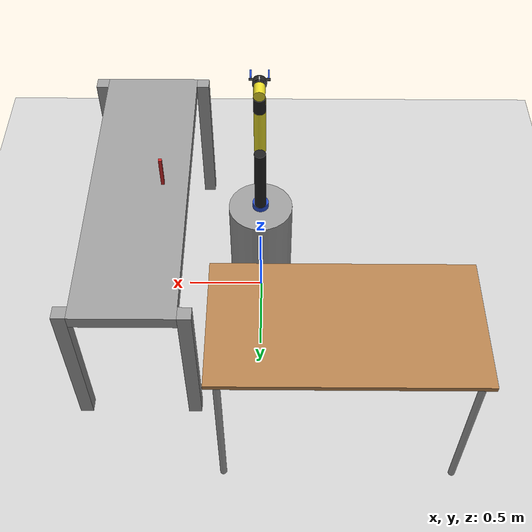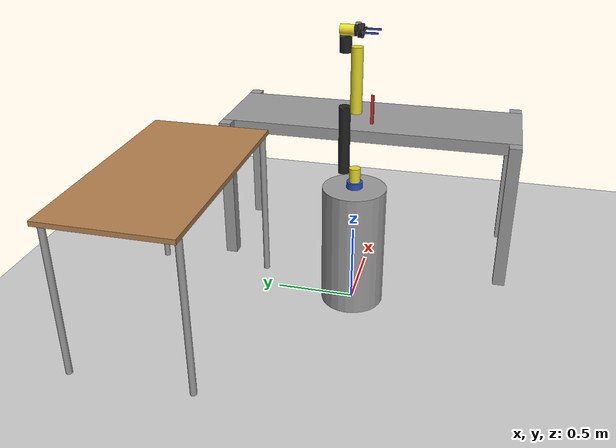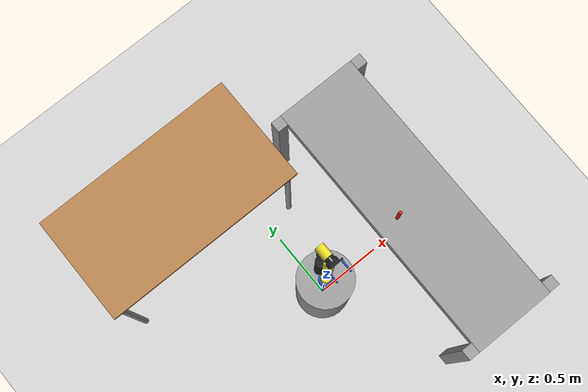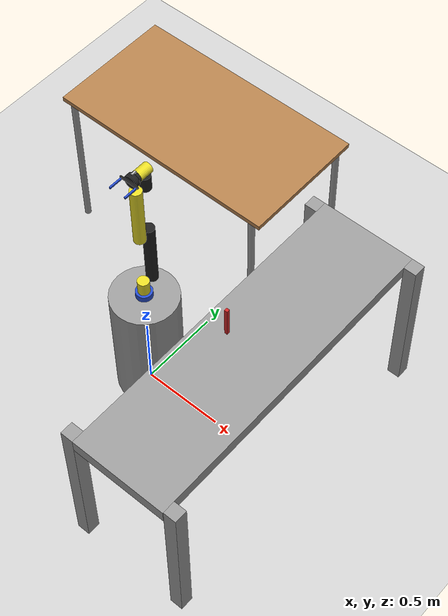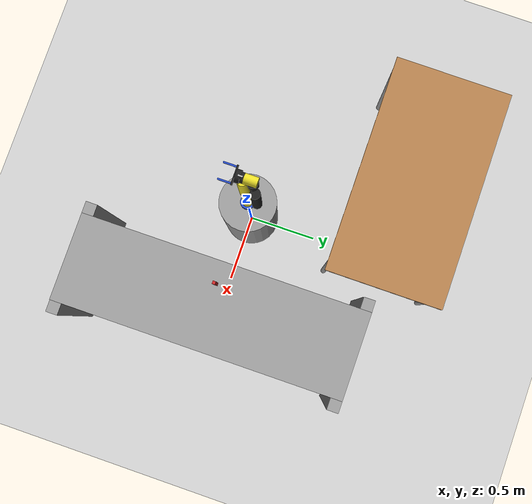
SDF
<sdf version="1.7">
 <world name="default">
  <light name="sun" type="directional">
   <pose>0 0 10 0 -0 0</pose>
   <diffuse>0.8 0.8 0.8 1</diffuse>
   <specular>0.2 0.2 0.2 1</specular>
   <attenuation>
    <range>1000</range>
    <constant>0.9</constant>
    <linear>0.01</linear>
    <quadratic>0.001</quadratic>
   </attenuation>
   <direction>-0.5 0.1 -0.9</direction>
   <spot><inner_angle>0</inner_angle><outer_angle>0</outer_angle><falloff>0</falloff></spot>
  </light>
  <model name="ground_plane">
   <static>1</static>
   <link name="link">
    <collision name="collision">
     <geometry><plane><normal>0 0 1</normal><size>100 100</size></plane></geometry>
     <surface>
      <contact><collide_bitmask>65535</collide_bitmask></contact>
      <friction><ode><mu>100</mu><mu2>50</mu2></ode></friction>
     </surface>
    </collision>
    <visual name="visual">
     <cast_shadows>0</cast_shadows>
     <geometry><plane><normal>0 0 1</normal><size>100 100</size></plane></geometry>
     <material>
      <script><uri>file://media/materials/scripts/gazebo.material</uri><name>Gazebo/Grey</name></script>
     </material>
    </visual>
   </link>
  </model>
  <gravity>0 0 -9.8</gravity>
  <magnetic_field>6e-06 2.3e-05 -4.2e-05</magnetic_field>
  <atmosphere type="adiabatic"/>
  <physics type="ode">
   <max_step_size>0.001</max_step_size>
   <real_time_factor>1</real_time_factor>
   <real_time_update_rate>1000</real_time_update_rate>
  </physics>
  <scene><ambient>0.4 0.4 0.4 1</ambient><background>0.7 0.7 0.7 1</background><shadows>1</shadows></scene>
  <spherical_coordinates>
   <surface_model>EARTH_WGS84</surface_model>
   <latitude_deg>0</latitude_deg>
   <longitude_deg>0</longitude_deg>
   <elevation>0</elevation>
   <heading_deg>0</heading_deg>
  </spherical_coordinates>
  <model name="table">
   <static>1</static>
   <link name="link_table">
    <collision name="surface">
     <pose>0 0 1 0 -0 0</pose>
     <geometry><box><size>1.5 0.8 0.03</size></box></geometry>
     <surface><friction><ode><mu>0.6</mu><mu2>0.6</mu2></ode></friction></surface>
    </collision>
    <visual name="visual1">
     <pose>0 0 1 0 -0 0</pose>
     <geometry><box><size>1.5 0.8 0.03</size></box></geometry>
     <material>
      <script><uri>file://media/materials/scripts/gazebo.material</uri><name>Gazebo/Wood</name></script>
     </material>
    </visual>
    <collision name="front_left_leg">
     <pose>0.68 0.38 0.5 0 -0 0</pose>
     <geometry><cylinder><radius>0.02</radius><length>1</length></cylinder></geometry>
    </collision>
    <visual name="front_left_leg">
     <pose>0.68 0.38 0.5 0 -0 0</pose>
     <geometry><cylinder><radius>0.02</radius><length>1</length></cylinder></geometry>
     <material>
      <script><uri>file://media/materials/scripts/gazebo.material</uri><name>Gazebo/Grey</name></script>
     </material>
    </visual>
    <collision name="front_right_leg">
     <pose>0.68 -0.38 0.5 0 -0 0</pose>
     <geometry><cylinder><radius>0.02</radius><length>1</length></cylinder></geometry>
    </collision>
    <visual name="front_right_leg">
     <pose>0.68 -0.38 0.5 0 -0 0</pose>
     <geometry><cylinder><radius>0.02</radius><length>1</length></cylinder></geometry>
     <material>
      <script><uri>file://media/materials/scripts/gazebo.material</uri><name>Gazebo/Grey</name></script>
     </material>
    </visual>
    <collision name="back_right_leg">
     <pose>-0.68 -0.38 0.5 0 -0 0</pose>
     <geometry><cylinder><radius>0.02</radius><length>1</length></cylinder></geometry>
    </collision>
    <visual name="back_right_leg">
     <pose>-0.68 -0.38 0.5 0 -0 0</pose>
     <geometry><cylinder><radius>0.02</radius><length>1</length></cylinder></geometry>
     <material>
      <script><uri>file://media/materials/scripts/gazebo.material</uri><name>Gazebo/Grey</name></script>
     </material>
    </visual>
    <collision name="back_left_leg">
     <pose>-0.68 0.38 0.5 0 -0 0</pose>
     <geometry><cylinder><radius>0.02</radius><length>1</length></cylinder></geometry>
    </collision>
    <visual name="back_left_leg">
     <pose>-0.68 0.38 0.5 0 -0 0</pose>
     <geometry><cylinder><radius>0.02</radius><length>1</length></cylinder></geometry>
     <material>
      <script><uri>file://media/materials/scripts/gazebo.material</uri><name>Gazebo/Grey</name></script>
     </material>
    </visual>
   </link>
   <pose>-0.470984 1.03526 0 0 -0 0</pose>
  </model>
  <model name="conveyor">
   <link name="link_0">
    <inertial>
     <mass>1</mass>
     <inertia>
      <ixx>0.166667</ixx>
      <ixy>0</ixy>
      <ixz>0</ixz>
      <iyy>0.166667</iyy>
      <iyz>0</iyz>
      <izz>0.166667</izz>
     </inertia>
    </inertial>
    <pose>0 -0.00065 0 0 -0 0</pose>
    <visual name="visual">
     <geometry><box><size>0.6 2 0.08</size></box></geometry>
     <material>
      <lighting>1</lighting>
      <script><uri>file://media/materials/scripts/gazebo.material</uri><name>Gazebo/Grey</name></script>
      <shader type="pixel"><normal_map>__default__</normal_map></shader>
      <ambient>0.21176 0.21568 0.21568 1</ambient>
      <diffuse>0.7 0.7 0.7 1</diffuse>
      <specular>0.01 0.01 0.01 1</specular>
      <emissive>0 0 0 1</emissive>
     </material>
    </visual>
    <collision name="collision">
     <geometry><box><size>0.6 2 0.08</size></box></geometry>
     <surface>
      <friction>
       <ode><mu>4</mu><mu2>1</mu2><fdir1>0 0 0</fdir1><slip1>0</slip1><slip2>0</slip2></ode>
       <torsional>
        <coefficient>1</coefficient>
        <patch_radius>0</patch_radius>
        <surface_radius>0</surface_radius>
        <use_patch_radius>1</use_patch_radius>
        <ode><slip>0</slip></ode>
       </torsional>
      </friction>
      <bounce><restitution_coefficient>0</restitution_coefficient><threshold>1e+06</threshold></bounce>
      <contact>
       <collide_without_contact>0</collide_without_contact>
       <collide_without_contact_bitmask>1</collide_without_contact_bitmask>
       <collide_bitmask>1</collide_bitmask>
       <ode>
        <soft_cfm>0</soft_cfm>
        <soft_erp>0.2</soft_erp>
        <kp>1e+13</kp>
        <kd>1</kd>
        <max_vel>0.01</max_vel>
        <min_depth>0</min_depth>
       </ode>
       <bullet>
        <split_impulse>1</split_impulse>
        <split_impulse_penetration_threshold>-0.01</split_impulse_penetration_threshold>
        <soft_cfm>0</soft_cfm>
        <soft_erp>0.2</soft_erp>
        <kp>1e+13</kp>
        <kd>1</kd>
       </bullet>
      </contact>
     </surface>
    </collision>
   </link>
   <link name="link_1">
    <inertial>
     <mass>1</mass>
     <inertia>
      <ixx>0.166667</ixx>
      <ixy>0</ixy>
      <ixz>0</ixz>
      <iyy>0.166667</iyy>
      <iyz>0</iyz>
      <izz>0.166667</izz>
     </inertia>
    </inertial>
    <pose>0.34 -0.9574 -0.46 0 -0 0</pose>
    <visual name="visual">
     <geometry><box><size>0.08 0.08 1</size></box></geometry>
     <material>
      <lighting>1</lighting>
      <script><uri>file://media/materials/scripts/gazebo.material</uri><name>Gazebo/Grey</name></script>
      <shader type="pixel"><normal_map>__default__</normal_map></shader>
      <ambient>0.3 0.3 0.3 1</ambient>
      <diffuse>0.7 0.7 0.7 1</diffuse>
      <specular>0.01 0.01 0.01 1</specular>
      <emissive>0 0 0 1</emissive>
     </material>
    </visual>
    <collision name="collision">
     <geometry><box><size>0.08 0.08 1</size></box></geometry>
     <surface>
      <friction>
       <ode><mu>1</mu><mu2>1</mu2><fdir1>0 0 0</fdir1><slip1>0</slip1><slip2>0</slip2></ode>
       <torsional>
        <coefficient>1</coefficient>
        <patch_radius>0</patch_radius>
        <surface_radius>0</surface_radius>
        <use_patch_radius>1</use_patch_radius>
        <ode><slip>0</slip></ode>
       </torsional>
      </friction>
      <bounce><restitution_coefficient>0</restitution_coefficient><threshold>1e+06</threshold></bounce>
      <contact>
       <collide_without_contact>0</collide_without_contact>
       <collide_without_contact_bitmask>1</collide_without_contact_bitmask>
       <collide_bitmask>1</collide_bitmask>
       <ode>
        <soft_cfm>0</soft_cfm>
        <soft_erp>0.2</soft_erp>
        <kp>1e+13</kp>
        <kd>1</kd>
        <max_vel>0.01</max_vel>
        <min_depth>0</min_depth>
       </ode>
       <bullet>
        <split_impulse>1</split_impulse>
        <split_impulse_penetration_threshold>-0.01</split_impulse_penetration_threshold>
        <soft_cfm>0</soft_cfm>
        <soft_erp>0.2</soft_erp>
        <kp>1e+13</kp>
        <kd>1</kd>
       </bullet>
      </contact>
     </surface>
    </collision>
   </link>
   <link name="link_1_clone">
    <inertial>
     <mass>1</mass>
     <inertia>
      <ixx>0.166667</ixx>
      <ixy>0</ixy>
      <ixz>0</ixz>
      <iyy>0.166667</iyy>
      <iyz>0</iyz>
      <izz>0.166667</izz>
     </inertia>
    </inertial>
    <pose>0.34 0.95935 -0.46 0 -0 0</pose>
    <visual name="visual">
     <geometry><box><size>0.08 0.08 1</size></box></geometry>
     <material>
      <lighting>1</lighting>
      <script><uri>file://media/materials/scripts/gazebo.material</uri><name>Gazebo/Grey</name></script>
      <shader type="pixel"><normal_map>__default__</normal_map></shader>
      <ambient>0.3 0.3 0.3 1</ambient>
      <diffuse>0.7 0.7 0.7 1</diffuse>
      <specular>0.01 0.01 0.01 1</specular>
      <emissive>0 0 0 1</emissive>
     </material>
    </visual>
    <collision name="collision">
     <geometry><box><size>0.08 0.08 1</size></box></geometry>
     <surface>
      <friction>
       <ode><mu>1</mu><mu2>1</mu2><fdir1>0 0 0</fdir1><slip1>0</slip1><slip2>0</slip2></ode>
       <torsional>
        <coefficient>1</coefficient>
        <patch_radius>0</patch_radius>
        <surface_radius>0</surface_radius>
        <use_patch_radius>1</use_patch_radius>
        <ode><slip>0</slip></ode>
       </torsional>
      </friction>
      <bounce><restitution_coefficient>0</restitution_coefficient><threshold>1e+06</threshold></bounce>
      <contact>
       <collide_without_contact>0</collide_without_contact>
       <collide_without_contact_bitmask>1</collide_without_contact_bitmask>
       <collide_bitmask>1</collide_bitmask>
       <ode>
        <soft_cfm>0</soft_cfm>
        <soft_erp>0.2</soft_erp>
        <kp>1e+13</kp>
        <kd>1</kd>
        <max_vel>0.01</max_vel>
        <min_depth>0</min_depth>
       </ode>
       <bullet>
        <split_impulse>1</split_impulse>
        <split_impulse_penetration_threshold>-0.01</split_impulse_penetration_threshold>
        <soft_cfm>0</soft_cfm>
        <soft_erp>0.2</soft_erp>
        <kp>1e+13</kp>
        <kd>1</kd>
       </bullet>
      </contact>
     </surface>
    </collision>
   </link>
   <link name="link_1_clone_0">
    <inertial>
     <mass>1</mass>
     <inertia>
      <ixx>0.166667</ixx>
      <ixy>0</ixy>
      <ixz>0</ixz>
      <iyy>0.166667</iyy>
      <iyz>0</iyz>
      <izz>0.166667</izz>
     </inertia>
    </inertial>
    <pose>-0.34 0.95935 -0.46 0 -0 0</pose>
    <visual name="visual">
     <geometry><box><size>0.08 0.08 1</size></box></geometry>
     <material>
      <lighting>1</lighting>
      <script><uri>file://media/materials/scripts/gazebo.material</uri><name>Gazebo/Grey</name></script>
      <shader type="pixel"><normal_map>__default__</normal_map></shader>
      <ambient>0.3 0.3 0.3 1</ambient>
      <diffuse>0.7 0.7 0.7 1</diffuse>
      <specular>0.01 0.01 0.01 1</specular>
      <emissive>0 0 0 1</emissive>
     </material>
    </visual>
    <collision name="collision">
     <geometry><box><size>0.08 0.08 1</size></box></geometry>
     <surface>
      <friction>
       <ode><mu>1</mu><mu2>1</mu2><fdir1>0 0 0</fdir1><slip1>0</slip1><slip2>0</slip2></ode>
       <torsional>
        <coefficient>1</coefficient>
        <patch_radius>0</patch_radius>
        <surface_radius>0</surface_radius>
        <use_patch_radius>1</use_patch_radius>
        <ode><slip>0</slip></ode>
       </torsional>
      </friction>
      <bounce><restitution_coefficient>0</restitution_coefficient><threshold>1e+06</threshold></bounce>
      <contact>
       <collide_without_contact>0</collide_without_contact>
       <collide_without_contact_bitmask>1</collide_without_contact_bitmask>
       <collide_bitmask>1</collide_bitmask>
       <ode>
        <soft_cfm>0</soft_cfm>
        <soft_erp>0.2</soft_erp>
        <kp>1e+13</kp>
        <kd>1</kd>
        <max_vel>0.01</max_vel>
        <min_depth>0</min_depth>
       </ode>
       <bullet>
        <split_impulse>1</split_impulse>
        <split_impulse_penetration_threshold>-0.01</split_impulse_penetration_threshold>
        <soft_cfm>0</soft_cfm>
        <soft_erp>0.2</soft_erp>
        <kp>1e+13</kp>
        <kd>1</kd>
       </bullet>
      </contact>
     </surface>
    </collision>
   </link>
   <link name="link_1_clone_1">
    <inertial>
     <mass>1</mass>
     <inertia>
      <ixx>0.166667</ixx>
      <ixy>0</ixy>
      <ixz>0</ixz>
      <iyy>0.166667</iyy>
      <iyz>0</iyz>
      <izz>0.166667</izz>
     </inertia>
    </inertial>
    <pose>-0.34 -0.96065 -0.46 0 -0 0</pose>
    <visual name="visual">
     <geometry><box><size>0.08 0.08 1</size></box></geometry>
     <material>
      <lighting>1</lighting>
      <script><uri>file://media/materials/scripts/gazebo.material</uri><name>Gazebo/Grey</name></script>
      <shader type="pixel"><normal_map>__default__</normal_map></shader>
      <ambient>0.3 0.3 0.3 1</ambient>
      <diffuse>0.7 0.7 0.7 1</diffuse>
      <specular>0.01 0.01 0.01 1</specular>
      <emissive>0 0 0 1</emissive>
     </material>
    </visual>
    <collision name="collision">
     <geometry><box><size>0.08 0.08 1</size></box></geometry>
     <surface>
      <friction>
       <ode><mu>1</mu><mu2>1</mu2><fdir1>0 0 0</fdir1><slip1>0</slip1><slip2>0</slip2></ode>
       <torsional>
        <coefficient>1</coefficient>
        <patch_radius>0</patch_radius>
        <surface_radius>0</surface_radius>
        <use_patch_radius>1</use_patch_radius>
        <ode><slip>0</slip></ode>
       </torsional>
      </friction>
      <bounce><restitution_coefficient>0</restitution_coefficient><threshold>1e+06</threshold></bounce>
      <contact>
       <collide_without_contact>0</collide_without_contact>
       <collide_without_contact_bitmask>1</collide_without_contact_bitmask>
       <collide_bitmask>1</collide_bitmask>
       <ode>
        <soft_cfm>0</soft_cfm>
        <soft_erp>0.2</soft_erp>
        <kp>1e+13</kp>
        <kd>1</kd>
        <max_vel>0.01</max_vel>
        <min_depth>0</min_depth>
       </ode>
       <bullet>
        <split_impulse>1</split_impulse>
        <split_impulse_penetration_threshold>-0.01</split_impulse_penetration_threshold>
        <soft_cfm>0</soft_cfm>
        <soft_erp>0.2</soft_erp>
        <kp>1e+13</kp>
        <kd>1</kd>
       </bullet>
      </contact>
     </surface>
    </collision>
   </link>
   <joint name="link_0_JOINT_0" type="fixed">
    <parent>link_0</parent>
    <child>link_1</child>
    <physics>
     <ode><limit><cfm>0</cfm><erp>0.2</erp></limit><suspension><cfm>0</cfm><erp>0.2</erp></suspension></ode>
    </physics>
   </joint>
   <joint name="link_0_JOINT_1" type="fixed">
    <parent>link_0</parent>
    <child>link_1_clone</child>
    <physics>
     <ode><limit><cfm>0</cfm><erp>0.2</erp></limit><suspension><cfm>0</cfm><erp>0.2</erp></suspension></ode>
    </physics>
   </joint>
   <joint name="link_0_JOINT_2" type="fixed">
    <parent>link_0</parent>
    <child>link_1_clone_0</child>
    <physics>
     <ode><limit><cfm>0</cfm><erp>0.2</erp></limit><suspension><cfm>0</cfm><erp>0.2</erp></suspension></ode>
    </physics>
   </joint>
   <joint name="link_0_JOINT_3" type="fixed">
    <parent>link_0</parent>
    <child>link_1_clone_1</child>
    <physics>
     <ode><limit><cfm>0</cfm><erp>0.2</erp></limit><suspension><cfm>0</cfm><erp>0.2</erp></suspension></ode>
    </physics>
   </joint>
   <static>0</static>
   <pose>0.741125 0.013165 0.96 0 -0 0.000397</pose>
  </model>
  <model name="support">
   <link name="link_2">
    <inertial>
     <mass>1</mass>
     <inertia><ixx>0.145833</ixx><ixy>0</ixy><ixz>0</ixz><iyy>0.145833</iyy><iyz>0</iyz><izz>0.125</izz></inertia>
    </inertial>
    <visual name="visual">
     <geometry><cylinder><radius>0.2</radius><length>0.8</length></cylinder></geometry>
     <material>
      <lighting>1</lighting>
      <script><uri>file://media/materials/scripts/gazebo.material</uri><name>Gazebo/Grey</name></script>
      <shader type="pixel"><normal_map>__default__</normal_map></shader>
      <ambient>0.3 0.3 0.3 1</ambient>
      <diffuse>0.7 0.7 0.7 1</diffuse>
      <specular>0.01 0.01 0.01 1</specular>
      <emissive>0 0 0 1</emissive>
     </material>
    </visual>
    <collision name="collision">
     <geometry><cylinder><radius>0.2</radius><length>0.8</length></cylinder></geometry>
     <surface>
      <friction>
       <ode><mu>1</mu><mu2>1</mu2><fdir1>0 0 0</fdir1><slip1>0</slip1><slip2>0</slip2></ode>
       <torsional>
        <coefficient>1</coefficient>
        <patch_radius>0</patch_radius>
        <surface_radius>0</surface_radius>
        <use_patch_radius>1</use_patch_radius>
        <ode><slip>0</slip></ode>
       </torsional>
      </friction>
      <bounce><restitution_coefficient>0</restitution_coefficient><threshold>1e+06</threshold></bounce>
      <contact>
       <collide_without_contact>0</collide_without_contact>
       <collide_without_contact_bitmask>1</collide_without_contact_bitmask>
       <collide_bitmask>1</collide_bitmask>
       <ode>
        <soft_cfm>0</soft_cfm>
        <soft_erp>0.2</soft_erp>
        <kp>1e+13</kp>
        <kd>1</kd>
        <max_vel>0.01</max_vel>
        <min_depth>0</min_depth>
       </ode>
       <bullet>
        <split_impulse>1</split_impulse>
        <split_impulse_penetration_threshold>-0.01</split_impulse_penetration_threshold>
        <soft_cfm>0</soft_cfm>
        <soft_erp>0.2</soft_erp>
        <kp>1e+13</kp>
        <kd>1</kd>
       </bullet>
      </contact>
     </surface>
    </collision>
   </link>
   <static>0</static>
   <pose>1e-06 1e-06 0.39999 0 -0 0</pose>
  </model>
  <audio><device>default</device></audio>
  <model name="cobot">
   <joint name="fixed" type="fixed">
    <pose relative_to="__model__">0 0 0.8 0 -0 0</pose>
    <parent>world</parent>
    <child>base_link</child>
   </joint>
   <link name="base_link">
    <pose relative_to="fixed">0 0 0 0 -0 0</pose>
    <inertial>
     <pose>0 0 0.02 0 -0 0</pose>
     <mass>4</mass>
     <inertia><ixx>0.003033</ixx><ixy>0</ixy><ixz>0</ixz><iyy>0.003033</iyy><iyz>0</iyz><izz>0.005</izz></inertia>
    </inertial>
    <collision name="base_link_collision">
     <pose>0 0 0.02 0 -0 0</pose>
     <geometry><cylinder><length>0.04</length><radius>0.05</radius></cylinder></geometry>
    </collision>
    <visual name="base_link_visual">
     <pose>0 0 0.02 0 -0 0</pose>
     <geometry><cylinder><length>0.04</length><radius>0.05</radius></cylinder></geometry>
     <material>
      <script><name>Gazebo/Blue</name><uri>file://media/materials/scripts/gazebo.material</uri></script>
     </material>
    </visual>
    <visual name="base_link_fixed_joint_lump__camera_link_visual_1">
     <pose>0 0 1 0 -0 0</pose>
     <geometry><box><size>0.01 0.03 0.03</size></box></geometry>
    </visual>
   </link>
   <joint name="base_link__link1" type="revolute">
    <pose relative_to="base_link">0 0 0.04 0 -0 0</pose>
    <parent>base_link</parent>
    <child>link1</child>
    <axis>
     <xyz>0 0 1</xyz>
     <limit><lower>-3.14159</lower><upper>3.14159</upper><effort>1000</effort><velocity>0.5</velocity></limit>
     <dynamics><spring_reference>0</spring_reference><spring_stiffness>0</spring_stiffness></dynamics>
    </axis>
   </joint>
   <link name="link1">
    <pose relative_to="base_link__link1">0 0 0 0 -0 0</pose>
    <inertial>
     <pose>0 0 0.045 0 -0 0</pose>
     <mass>3.7</mass>
     <inertia>
      <ixx>0.00363063</ixx>
      <ixy>0</ixy>
      <ixz>0</ixz>
      <iyy>0.00363063</iyy>
      <iyz>0</iyz>
      <izz>0.00226625</izz>
     </inertia>
    </inertial>
    <collision name="link1_collision">
     <pose>0 0 0.045 0 -0 0</pose>
     <geometry><cylinder><length>0.09</length><radius>0.035</radius></cylinder></geometry>
    </collision>
    <visual name="link1_visual">
     <pose>0 0 0.045 0 -0 0</pose>
     <geometry><cylinder><length>0.09</length><radius>0.035</radius></cylinder></geometry>
     <material>
      <script><name>Gazebo/Yellow</name><uri>file://media/materials/scripts/gazebo.material</uri></script>
     </material>
    </visual>
   </link>
   <joint name="link1__link2" type="revolute">
    <pose relative_to="link1">0 0.07 0.055 0 -0 0</pose>
    <parent>link1</parent>
    <child>link2</child>
    <axis>
     <xyz>0 1 0</xyz>
     <limit><lower>-3.14159</lower><upper>3.14159</upper><effort>1000</effort><velocity>0.5</velocity></limit>
     <dynamics><spring_reference>0</spring_reference><spring_stiffness>0</spring_stiffness></dynamics>
    </axis>
   </joint>
   <link name="link2">
    <pose relative_to="link1__link2">0 0 0 0 -0 0</pose>
    <inertial>
     <pose>0 0 0.2125 0 -0 0</pose>
     <mass>8.3</mass>
     <inertia><ixx>0.499729</ixx><ixy>0</ixy><ixz>0</ixz><iyy>0</iyy><iyz>0</iyz><izz>0.499729</izz></inertia>
    </inertial>
    <collision name="link2_collision">
     <pose>0 0 0.2125 0 -0 0</pose>
     <geometry><cylinder><length>0.425</length><radius>0.035</radius></cylinder></geometry>
    </collision>
    <visual name="link2_visual">
     <pose>0 0 0.2125 0 -0 0</pose>
     <geometry><cylinder><length>0.425</length><radius>0.035</radius></cylinder></geometry>
     <material>
      <script><name>Gazebo/Black</name><uri>file://media/materials/scripts/gazebo.material</uri></script>
     </material>
    </visual>
   </link>
   <joint name="link2__link3" type="revolute">
    <pose relative_to="link2">0 -0.0675 0.39 0 -0 0</pose>
    <parent>link2</parent>
    <child>link3</child>
    <axis>
     <xyz>0 1 0</xyz>
     <limit><lower>-3.14159</lower><upper>3.14159</upper><effort>1000</effort><velocity>0.5</velocity></limit>
     <dynamics><spring_reference>0</spring_reference><spring_stiffness>0</spring_stiffness></dynamics>
    </axis>
   </joint>
   <link name="link3">
    <pose relative_to="link2__link3">0 0 0 0 -0 0</pose>
    <inertial>
     <pose>0 0 0.196 0 -0 0</pose>
     <mass>2.3</mass>
     <inertia><ixx>0.117809</ixx><ixy>0</ixy><ixz>0</ixz><iyy>0</iyy><iyz>0</iyz><izz>0.117809</izz></inertia>
    </inertial>
    <collision name="link3_collision">
     <pose>0 0 0.196 0 -0 0</pose>
     <geometry><cylinder><length>0.392</length><radius>0.035</radius></cylinder></geometry>
    </collision>
    <visual name="link3_visual">
     <pose>0 0 0.196 0 -0 0</pose>
     <geometry><cylinder><length>0.392</length><radius>0.035</radius></cylinder></geometry>
     <material>
      <script><name>Gazebo/Yellow</name><uri>file://media/materials/scripts/gazebo.material</uri></script>
     </material>
    </visual>
   </link>
   <joint name="link3__link4" type="revolute">
    <pose relative_to="link3">0 0.0675 0.357 0 -0 0</pose>
    <parent>link3</parent>
    <child>link4</child>
    <axis>
     <xyz>0 1 0</xyz>
     <limit><lower>-3.14159</lower><upper>3.14159</upper><effort>1000</effort><velocity>0.5</velocity></limit>
     <dynamics><spring_reference>0</spring_reference><spring_stiffness>0</spring_stiffness></dynamics>
    </axis>
   </joint>
   <link name="link4">
    <pose relative_to="link3__link4">0 0 0 0 -0 0</pose>
    <inertial>
     <pose>0 0 0.047 0 -0 0</pose>
     <mass>1.2</mass>
     <inertia><ixx>0.0035344</ixx><ixy>0</ixy><ixz>0</ixz><iyy>0</iyy><iyz>0</iyz><izz>0.0035344</izz></inertia>
    </inertial>
    <collision name="link4_collision">
     <pose>0 0 0.047 0 -0 0</pose>
     <geometry><cylinder><length>0.094</length><radius>0.035</radius></cylinder></geometry>
    </collision>
    <visual name="link4_visual">
     <pose>0 0 0.047 0 -0 0</pose>
     <geometry><cylinder><length>0.094</length><radius>0.035</radius></cylinder></geometry>
     <material>
      <script><name>Gazebo/Black</name><uri>file://media/materials/scripts/gazebo.material</uri></script>
     </material>
    </visual>
   </link>
   <joint name="link4__link5" type="revolute">
    <pose relative_to="link4">0 0 0.1265 1.57 -0 0</pose>
    <parent>link4</parent>
    <child>link5</child>
    <axis>
     <xyz>0 1 0</xyz>
     <limit><lower>-3.14159</lower><upper>3.14159</upper><effort>1000</effort><velocity>0.5</velocity></limit>
     <dynamics><spring_reference>0</spring_reference><spring_stiffness>0</spring_stiffness></dynamics>
    </axis>
   </joint>
   <link name="link5">
    <pose relative_to="link4__link5">0 0 0 0 -0 0</pose>
    <inertial>
     <pose>0 0 0.009 0 -0 0</pose>
     <mass>1.2</mass>
     <inertia><ixx>0.0027556</ixx><ixy>0</ixy><ixz>0</ixz><iyy>0</iyy><iyz>0</iyz><izz>0.0027556</izz></inertia>
    </inertial>
    <collision name="link5_collision">
     <pose>0 0 0.009 0 -0 0</pose>
     <geometry><cylinder><length>0.083</length><radius>0.0325</radius></cylinder></geometry>
    </collision>
    <visual name="link5_visual">
     <pose>0 0 0.009 0 -0 0</pose>
     <geometry><cylinder><length>0.083</length><radius>0.0325</radius></cylinder></geometry>
     <material>
      <script><name>Gazebo/Yellow</name><uri>file://media/materials/scripts/gazebo.material</uri></script>
     </material>
    </visual>
   </link>
   <joint name="link5__link6" type="revolute">
    <pose relative_to="link5">0 0 0.0505 0 -0 0</pose>
    <parent>link5</parent>
    <child>link6</child>
    <axis>
     <xyz>0 0 1</xyz>
     <limit><lower>-3.14159</lower><upper>3.14159</upper><effort>1000</effort><velocity>0.5</velocity></limit>
     <dynamics><spring_reference>0</spring_reference><spring_stiffness>0</spring_stiffness></dynamics>
    </axis>
   </joint>
   <link name="link6">
    <pose relative_to="link5__link6">0 0 0 0 -0 0</pose>
    <inertial>
     <pose>0 0.001316 0.035 0 -0 0</pose>
     <mass>0.95</mass>
     <inertia>
      <ixx>0.000826584</ixx>
      <ixy>0</ixy>
      <ixz>0</ixz>
      <iyy>0.000821979</iyy>
      <iyz>-2.5e-05</iyz>
      <izz>0.000476897</izz>
     </inertia>
    </inertial>
    <collision name="link6_collision">
     <pose>0 0 0.01 0 -0 0</pose>
     <geometry><cylinder><length>0.02</length><radius>0.0325</radius></cylinder></geometry>
    </collision>
    <collision name="link6_fixed_joint_lump__gripper_connector_collision_1">
     <pose>0 0 0.035 0 -0 0</pose>
     <geometry><cylinder><length>0.03</length><radius>0.04</radius></cylinder></geometry>
    </collision>
    <collision name="link6_fixed_joint_lump__finger_support_collision_2">
     <pose>0 0.005 0.055 0 -0 0</pose>
     <geometry><box><size>0.12 0.01 0.01</size></box></geometry>
    </collision>
    <visual name="link6_visual">
     <pose>0 0 0.01 0 -0 0</pose>
     <geometry><cylinder><length>0.02</length><radius>0.0325</radius></cylinder></geometry>
     <material>
      <script><name>Gazebo/Black</name><uri>file://media/materials/scripts/gazebo.material</uri></script>
     </material>
    </visual>
    <visual name="link6_fixed_joint_lump__gripper_connector_visual_1">
     <pose>0 0 0.035 0 -0 0</pose>
     <geometry><cylinder><length>0.03</length><radius>0.04</radius></cylinder></geometry>
     <material>
      <script><name>Gazebo/Black</name><uri>file://media/materials/scripts/gazebo.material</uri></script>
     </material>
    </visual>
    <visual name="link6_fixed_joint_lump__finger_support_visual_2">
     <pose>0 0.005 0.055 0 -0 0</pose>
     <geometry><box><size>0.12 0.01 0.01</size></box></geometry>
     <material>
      <script><name>Gazebo/Black</name><uri>file://media/materials/scripts/gazebo.material</uri></script>
     </material>
    </visual>
   </link>
   <joint name="finger_left_joint" type="prismatic">
    <pose relative_to="link6">0.05 0 0.061 0 -0 0</pose>
    <parent>link6</parent>
    <child>finger_left</child>
    <axis>
     <xyz>1 0 0</xyz>
     <limit><lower>-0.044</lower><upper>0</upper><effort>400</effort><velocity>0.5</velocity></limit>
     <dynamics>
      <damping>0</damping>
      <friction>2</friction>
      <spring_reference>0</spring_reference>
      <spring_stiffness>0</spring_stiffness>
     </dynamics>
    </axis>
   </joint>
   <link name="finger_left">
    <pose relative_to="finger_left_joint">0 0 0 0 -0 0</pose>
    <inertial>
     <pose>0 0 0.04 0 -0 0</pose>
     <mass>0.2</mass>
     <inertia>
      <ixx>0.00042667</ixx>
      <ixy>0</ixy>
      <ixz>0</ixz>
      <iyy>0.00042667</iyy>
      <iyz>0</iyz>
      <izz>8.3e-06</izz>
     </inertia>
    </inertial>
    <collision name="finger_left_collision">
     <pose>0 0 0.04 0 -0 0</pose>
     <geometry><box><size>0.01 0.01 0.08</size></box></geometry>
    </collision>
    <visual name="finger_left_visual">
     <pose>0 0 0.04 0 -0 0</pose>
     <geometry><box><size>0.01 0.01 0.08</size></box></geometry>
     <material>
      <script><name>Gazebo/Blue</name><uri>file://media/materials/scripts/gazebo.material</uri></script>
     </material>
    </visual>
   </link>
   <joint name="finger_right_joint" type="prismatic">
    <pose relative_to="link6">-0.05 0 0.061 0 -0 0</pose>
    <parent>link6</parent>
    <child>finger_right</child>
    <axis>
     <xyz>1 0 0</xyz>
     <limit><lower>0</lower><upper>0.044</upper><effort>400</effort><velocity>0.5</velocity></limit>
     <dynamics>
      <damping>1</damping>
      <friction>2</friction>
      <spring_reference>0</spring_reference>
      <spring_stiffness>0</spring_stiffness>
     </dynamics>
    </axis>
   </joint>
   <link name="finger_right">
    <pose relative_to="finger_right_joint">0 0 0 0 -0 0</pose>
    <inertial>
     <pose>0 0 0.04 0 -0 0</pose>
     <mass>0.2</mass>
     <inertia>
      <ixx>0.00042667</ixx>
      <ixy>0</ixy>
      <ixz>0</ixz>
      <iyy>0.00042667</iyy>
      <iyz>0</iyz>
      <izz>8.3e-06</izz>
     </inertia>
    </inertial>
    <collision name="finger_right_collision">
     <pose>0 0 0.04 0 -0 0</pose>
     <geometry><box><size>0.01 0.01 0.08</size></box></geometry>
    </collision>
    <visual name="finger_right_visual">
     <pose>0 0 0.04 0 -0 0</pose>
     <geometry><box><size>0.01 0.01 0.08</size></box></geometry>
     <material>
      <script><name>Gazebo/Blue</name><uri>file://media/materials/scripts/gazebo.material</uri></script>
     </material>
    </visual>
   </link>
   <plugin name="gazebo_grasp_fix" filename="libgazebo_grasp_fix.so">
    <arm>
     <arm_name>custom_gripper</arm_name>
     <palm_link>link6</palm_link>
     <gripper_link>finger_right</gripper_link>
     <gripper_link>finger_left</gripper_link>
    </arm>
    <forces_angle_tolerance>100</forces_angle_tolerance>
    <update_rate>4</update_rate>
    <grip_count_threshold>4</grip_count_threshold>
    <max_grip_count>8</max_grip_count>
    <release_tolerance>0.005</release_tolerance>
    <disable_collisions_on_attach>0</disable_collisions_on_attach>
    <contact_topic>__default_topic__</contact_topic>
   </plugin>
   <plugin name="gazebo_grasp_fix" filename="libgazebo_grasp_fix.so">
    <arm>
     <arm_name>custom_gripper</arm_name>
     <palm_link>link6</palm_link>
     <gripper_link>finger_right</gripper_link>
     <gripper_link>finger_left</gripper_link>
    </arm>
    <forces_angle_tolerance>100</forces_angle_tolerance>
    <update_rate>4</update_rate>
    <grip_count_threshold>4</grip_count_threshold>
    <max_grip_count>8</max_grip_count>
    <release_tolerance>0.005</release_tolerance>
    <disable_collisions_on_attach>0</disable_collisions_on_attach>
    <contact_topic>__default_topic__</contact_topic>
   </plugin>
   <plugin name="finger_left_joint_mimic_joint_plugin" filename="libroboticsgroup_upatras_gazebo_mimic_joint_plugin.so">
    <joint>finger_right_joint</joint>
    <mimicJoint>finger_left_joint</mimicJoint>
    <multiplier>-1.0</multiplier>
    <offset>0</offset>
    <sensitiveness>0.0</sensitiveness>
    <maxEffort>200</maxEffort>
   </plugin>
   <static>0</static>
   <plugin name="gazebo_ros2_control" filename="libgazebo_ros2_control.so">
    <robot_param>robot_description</robot_param>
    <parameters>/home/fra/ros2_master_ws/install/cobot_gazebo/share/cobot_gazebo/config/controllers_trajectory.yaml</parameters>
   </plugin>
   <pose>-0 2.5e-05 0 3.1e-05 -0 0</pose>
  </model>
  <model name="red_cube">
   <link name="link_0">
    <inertial>
     <mass>1</mass>
     <inertia>
      <ixx>0.166667</ixx>
      <ixy>0</ixy>
      <ixz>0</ixz>
      <iyy>0.166667</iyy>
      <iyz>0</iyz>
      <izz>0.166667</izz>
     </inertia>
    </inertial>
    <visual name="visual">
     <geometry><box><size>0.02 0.02 0.2</size></box></geometry>
     <material>
      <lighting>1</lighting>
      <script><uri>file://media/materials/scripts/gazebo.material</uri><name>Gazebo/Red</name></script>
      <shader type="pixel"><normal_map>__default__</normal_map></shader>
      <ambient>1 0 0 1</ambient>
      <diffuse>0.7 0.7 0.7 1</diffuse>
      <specular>0.01 0.01 0.01 1</specular>
      <emissive>0 0 0 1</emissive>
     </material>
    </visual>
    <collision name="collision">
     <geometry><box><size>0.02 0.02 0.2</size></box></geometry>
     <surface>
      <friction>
       <ode><mu>1</mu><mu2>1</mu2><fdir1>0 0 0</fdir1><slip1>0</slip1><slip2>0</slip2></ode>
       <torsional>
        <coefficient>1</coefficient>
        <patch_radius>0</patch_radius>
        <surface_radius>0</surface_radius>
        <use_patch_radius>1</use_patch_radius>
        <ode><slip>0</slip></ode>
       </torsional>
      </friction>
      <bounce><restitution_coefficient>0</restitution_coefficient><threshold>1e+06</threshold></bounce>
      <contact>
       <collide_without_contact>0</collide_without_contact>
       <collide_without_contact_bitmask>1</collide_without_contact_bitmask>
       <collide_bitmask>1</collide_bitmask>
       <ode>
        <soft_cfm>0</soft_cfm>
        <soft_erp>0.2</soft_erp>
        <kp>1e+13</kp>
        <kd>1</kd>
        <max_vel>0.01</max_vel>
        <min_depth>0</min_depth>
       </ode>
       <bullet>
        <split_impulse>1</split_impulse>
        <split_impulse_penetration_threshold>-0.01</split_impulse_penetration_threshold>
        <soft_cfm>0</soft_cfm>
        <soft_erp>0.2</soft_erp>
        <kp>1e+13</kp>
        <kd>1</kd>
       </bullet>
      </contact>
     </surface>
    </collision>
   </link>
   <static>0</static>
   <pose>0.595096 0.001416 1.09999 5e-06 1.5e-05 -0.000936</pose>
  </model>
 </world>
</sdf>
